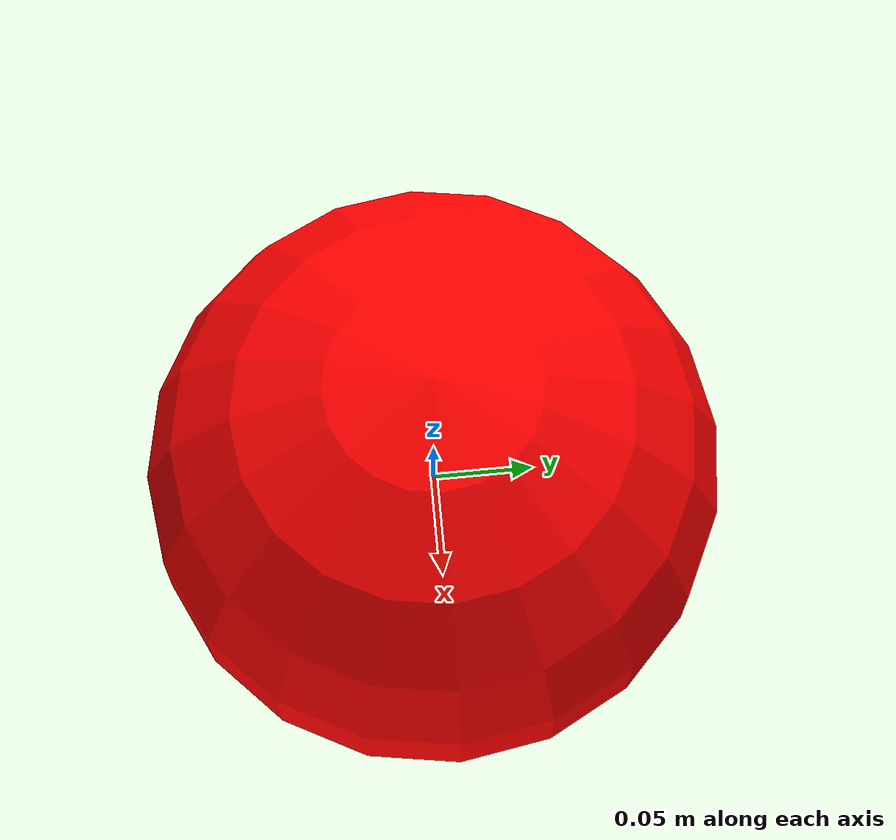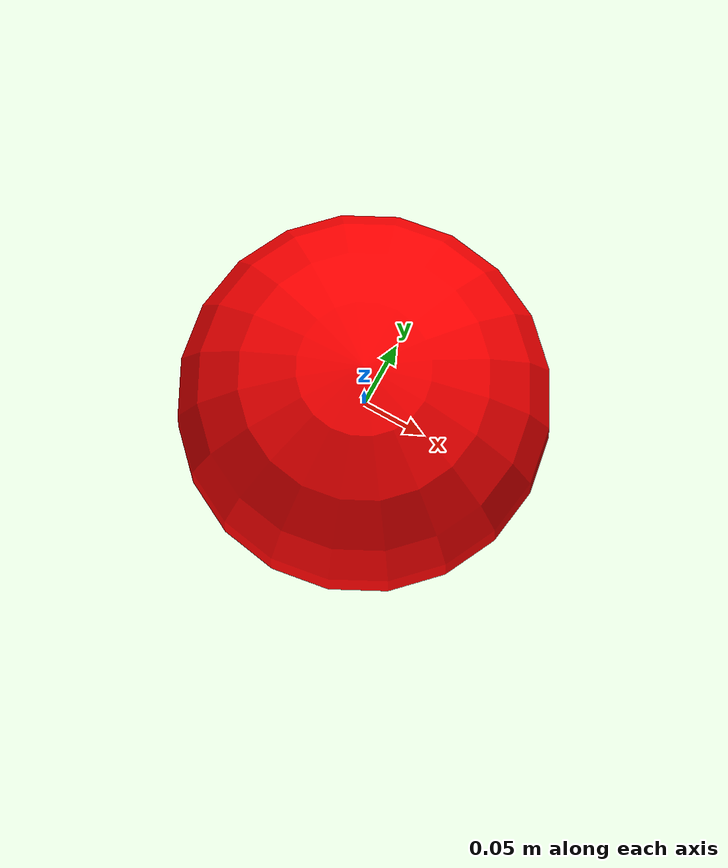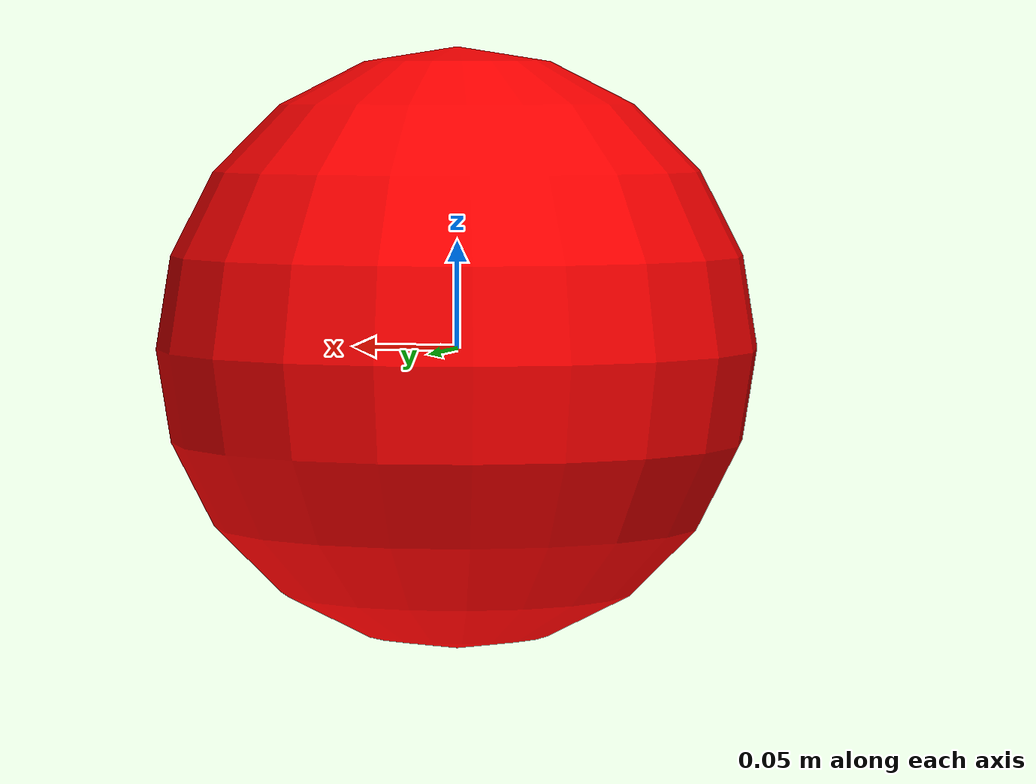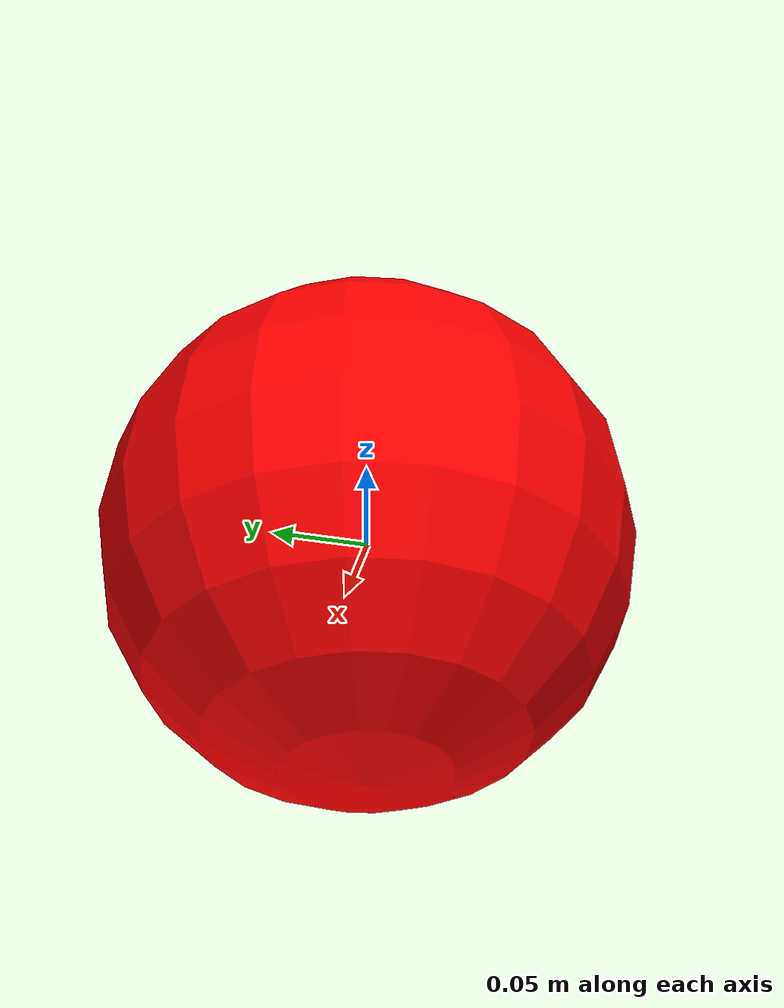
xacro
<?xml version="1.0"?>
<!-- The Gazebo model name is assigned by spawn_model; keep direct xacro usable. -->
<robot xmlns:xacro="http://www.ros.org/wiki/xacro" name="calibration_marker">
  <xacro:arg name="model_name" default="cal_marker"/>
  <xacro:arg name="color" default="1 0 0 1"/>
  <xacro:arg name="gazebo_material" default="Gazebo/Red"/>
  <xacro:arg name="radius" default="0.14"/>
  <link name="marker">
    <inertial><mass value="0.01"/><inertia ixx="0.0001" ixy="0" ixz="0" iyy="0.0001" iyz="0" izz="0.0001"/></inertial>
    <visual><geometry><sphere radius="$(arg radius)"/></geometry><material name="marker_color"><color rgba="$(arg color)"/></material></visual>
    <collision><geometry><sphere radius="$(arg radius)"/></geometry></collision>
  </link>
  <!-- Gazebo Classic does not reliably preserve URDF RGBA materials during
       URDF-to-SDF conversion. Use its built-in material scripts explicitly. -->
  <gazebo reference="marker"><material>$(arg gazebo_material)</material></gazebo>
  <gazebo><static>true</static></gazebo>
</robot>
